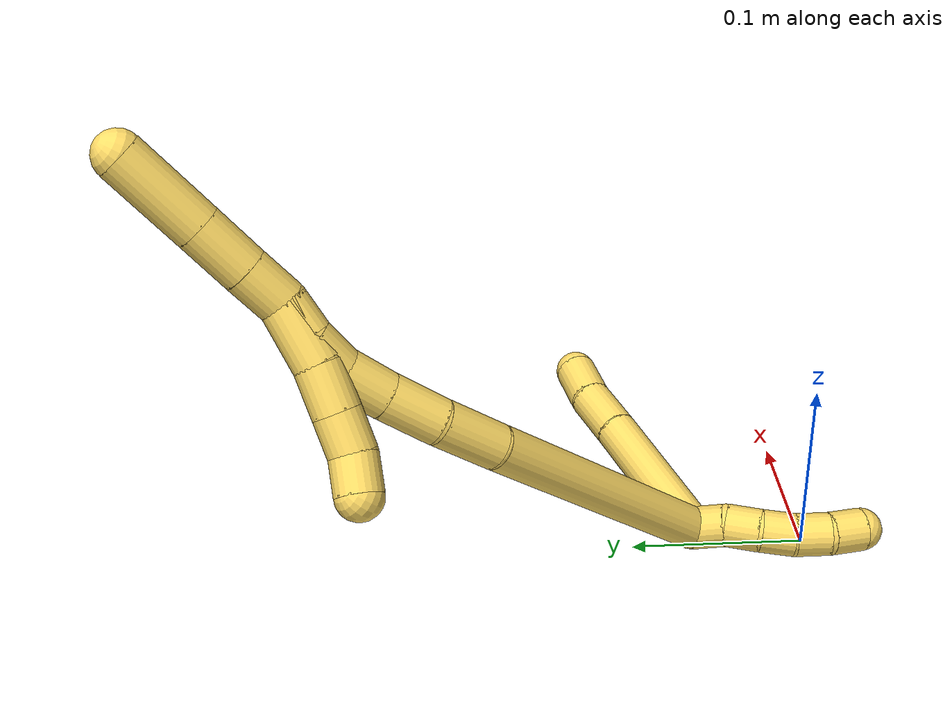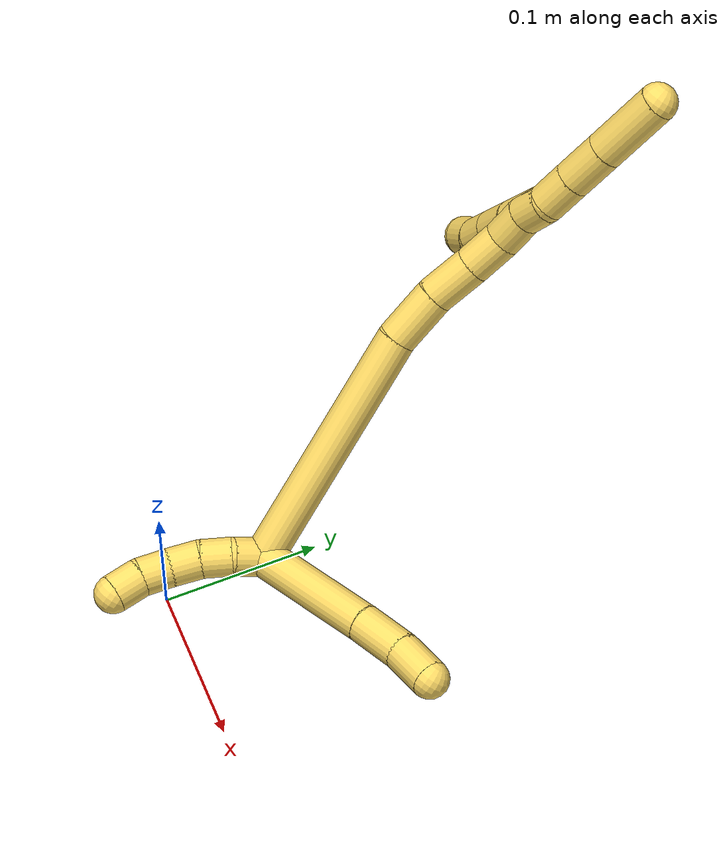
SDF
<sdf version="1.7">
 <world name="default">
  <model name="5">
   <static>0</static>
   <link name="5">
    <collision name="collision-cylinder-e_1_2_8">
     <pose>0.042508 0.008999 0.008983 -0.786288 1.28016 -0.599093</pose>
     <geometry><cylinder><radius>0.0125</radius><length>0.088738</length></cylinder></geometry>
     <surface>
      <friction><ode><mu>1.16</mu><mu2>1.16</mu2><slip1>0</slip1><slip2>0</slip2></ode></friction>
      <contact><ode><kp>1e+06</kp><kd>1</kd><max_vel>0</max_vel><min_depth>0.001</min_depth></ode></contact>
     </surface>
    </collision>
    <visual name="visual-cylinder-e_1_2_8">
     <pose>0.042508 0.008999 0.008983 -0.786288 1.28016 -0.599093</pose>
     <geometry><cylinder><radius>0.0125</radius><length>0.088738</length></cylinder></geometry>
     <material><ambient>1 0.858824 0.4 1</ambient></material>
    </visual>
    <collision name="collision-cylinder-e_2_8_9">
     <pose>0.100896 0.021912 0.020562 -0.985112 1.28319 -0.762579</pose>
     <geometry><cylinder><radius>0.0125</radius><length>0.03312</length></cylinder></geometry>
     <surface>
      <friction><ode><mu>1.16</mu><mu2>1.16</mu2><slip1>0</slip1><slip2>0</slip2></ode></friction>
      <contact><ode><kp>1e+06</kp><kd>1</kd><max_vel>0</max_vel><min_depth>0.001</min_depth></ode></contact>
     </surface>
    </collision>
    <visual name="visual-cylinder-e_2_8_9">
     <pose>0.100896 0.021912 0.020562 -0.985112 1.28319 -0.762579</pose>
     <geometry><cylinder><radius>0.0125</radius><length>0.03312</length></cylinder></geometry>
     <material><ambient>1 0.858824 0.4 1</ambient></material>
    </visual>
    <collision name="collision-cylinder-e_3_9_6">
     <pose>0.130711 0.027628 0.023903 -1.17906 1.43179 -1.05387</pose>
     <geometry><cylinder><radius>0.0125</radius><length>0.028142</length></cylinder></geometry>
     <surface>
      <friction><ode><mu>1.16</mu><mu2>1.16</mu2><slip1>0</slip1><slip2>0</slip2></ode></friction>
      <contact><ode><kp>1e+06</kp><kd>1</kd><max_vel>0</max_vel><min_depth>0.001</min_depth></ode></contact>
     </surface>
    </collision>
    <visual name="visual-cylinder-e_3_9_6">
     <pose>0.130711 0.027628 0.023903 -1.17906 1.43179 -1.05387</pose>
     <geometry><cylinder><radius>0.0125</radius><length>0.028142</length></cylinder></geometry>
     <material><ambient>1 0.858824 0.4 1</ambient></material>
    </visual>
    <collision name="collision-cylinder-e_1_2_10">
     <pose>-0.003093 -0.008433 -0.004395 2.05127 -0.314426 -0.511327</pose>
     <geometry><cylinder><radius>0.0125</radius><length>0.02</length></cylinder></geometry>
     <surface>
      <friction><ode><mu>1.16</mu><mu2>1.16</mu2><slip1>0</slip1><slip2>0</slip2></ode></friction>
      <contact><ode><kp>1e+06</kp><kd>1</kd><max_vel>0</max_vel><min_depth>0.001</min_depth></ode></contact>
     </surface>
    </collision>
    <visual name="visual-cylinder-e_1_2_10">
     <pose>-0.003093 -0.008433 -0.004395 2.05127 -0.314426 -0.511327</pose>
     <geometry><cylinder><radius>0.0125</radius><length>0.02</length></cylinder></geometry>
     <material><ambient>1 0.858824 0.4 1</ambient></material>
    </visual>
    <collision name="collision-cylinder-e_2_10_11">
     <pose>-0.010425 -0.0236 -0.014847 2.30332 -0.437827 -0.926253</pose>
     <geometry><cylinder><radius>0.0125</radius><length>0.02</length></cylinder></geometry>
     <surface>
      <friction><ode><mu>1.16</mu><mu2>1.16</mu2><slip1>0</slip1><slip2>0</slip2></ode></friction>
      <contact><ode><kp>1e+06</kp><kd>1</kd><max_vel>0</max_vel><min_depth>0.001</min_depth></ode></contact>
     </surface>
    </collision>
    <visual name="visual-cylinder-e_2_10_11">
     <pose>-0.010425 -0.0236 -0.014847 2.30332 -0.437827 -0.926253</pose>
     <geometry><cylinder><radius>0.0125</radius><length>0.02</length></cylinder></geometry>
     <material><ambient>1 0.858824 0.4 1</ambient></material>
    </visual>
    <collision name="collision-cylinder-e_3_11_12">
     <pose>-0.017515 -0.036528 -0.028218 2.43882 -0.289071 -0.755883</pose>
     <geometry><cylinder><radius>0.0125</radius><length>0.02</length></cylinder></geometry>
     <surface>
      <friction><ode><mu>1.16</mu><mu2>1.16</mu2><slip1>0</slip1><slip2>0</slip2></ode></friction>
      <contact><ode><kp>1e+06</kp><kd>1</kd><max_vel>0</max_vel><min_depth>0.001</min_depth></ode></contact>
     </surface>
    </collision>
    <visual name="visual-cylinder-e_3_11_12">
     <pose>-0.017515 -0.036528 -0.028218 2.43882 -0.289071 -0.755883</pose>
     <geometry><cylinder><radius>0.0125</radius><length>0.02</length></cylinder></geometry>
     <material><ambient>1 0.858824 0.4 1</ambient></material>
    </visual>
    <collision name="collision-cylinder-e_4_12_13">
     <pose>-0.021833 -0.049774 -0.042471 2.34822 -0.147248 -0.348581</pose>
     <geometry><cylinder><radius>0.0125</radius><length>0.02</length></cylinder></geometry>
     <surface>
      <friction><ode><mu>1.16</mu><mu2>1.16</mu2><slip1>0</slip1><slip2>0</slip2></ode></friction>
      <contact><ode><kp>1e+06</kp><kd>1</kd><max_vel>0</max_vel><min_depth>0.001</min_depth></ode></contact>
     </surface>
    </collision>
    <visual name="visual-cylinder-e_4_12_13">
     <pose>-0.021833 -0.049774 -0.042471 2.34822 -0.147248 -0.348581</pose>
     <geometry><cylinder><radius>0.0125</radius><length>0.02</length></cylinder></geometry>
     <material><ambient>1 0.858824 0.4 1</ambient></material>
    </visual>
    <collision name="collision-cylinder-e_5_13_5">
     <pose>-0.022605 -0.063103 -0.05716 2.46071 0.069631 0.19602</pose>
     <geometry><cylinder><radius>0.0125</radius><length>0.02</length></cylinder></geometry>
     <surface>
      <friction><ode><mu>1.16</mu><mu2>1.16</mu2><slip1>0</slip1><slip2>0</slip2></ode></friction>
      <contact><ode><kp>1e+06</kp><kd>1</kd><max_vel>0</max_vel><min_depth>0.001</min_depth></ode></contact>
     </surface>
    </collision>
    <visual name="visual-cylinder-e_5_13_5">
     <pose>-0.022605 -0.063103 -0.05716 2.46071 0.069631 0.19602</pose>
     <geometry><cylinder><radius>0.0125</radius><length>0.02</length></cylinder></geometry>
     <material><ambient>1 0.858824 0.4 1</ambient></material>
    </visual>
    <collision name="collision-cylinder-e_1_2_14">
     <pose>-0.008914 0.001723 0.081495 -0.021138 -0.108929 0.001152</pose>
     <geometry><cylinder><radius>0.0125</radius><length>0.163999</length></cylinder></geometry>
     <surface>
      <friction><ode><mu>1.16</mu><mu2>1.16</mu2><slip1>0</slip1><slip2>0</slip2></ode></friction>
      <contact><ode><kp>1e+06</kp><kd>1</kd><max_vel>0</max_vel><min_depth>0.001</min_depth></ode></contact>
     </surface>
    </collision>
    <visual name="visual-cylinder-e_1_2_14">
     <pose>-0.008914 0.001723 0.081495 -0.021138 -0.108929 0.001152</pose>
     <geometry><cylinder><radius>0.0125</radius><length>0.163999</length></cylinder></geometry>
     <material><ambient>1 0.858824 0.4 1</ambient></material>
    </visual>
    <collision name="collision-cylinder-e_2_14_15">
     <pose>-0.017107 0.005537 0.180884 -0.11635 0.040053 -0.002333</pose>
     <geometry><cylinder><radius>0.0125</radius><length>0.036058</length></cylinder></geometry>
     <surface>
      <friction><ode><mu>1.16</mu><mu2>1.16</mu2><slip1>0</slip1><slip2>0</slip2></ode></friction>
      <contact><ode><kp>1e+06</kp><kd>1</kd><max_vel>0</max_vel><min_depth>0.001</min_depth></ode></contact>
     </surface>
    </collision>
    <visual name="visual-cylinder-e_2_14_15">
     <pose>-0.017107 0.005537 0.180884 -0.11635 0.040053 -0.002333</pose>
     <geometry><cylinder><radius>0.0125</radius><length>0.036058</length></cylinder></geometry>
     <material><ambient>1 0.858824 0.4 1</ambient></material>
    </visual>
    <collision name="collision-cylinder-e_3_15_16">
     <pose>-0.013338 0.010373 0.213666 -0.182284 0.198615 -0.018212</pose>
     <geometry><cylinder><radius>0.0125</radius><length>0.030887</length></cylinder></geometry>
     <surface>
      <friction><ode><mu>1.16</mu><mu2>1.16</mu2><slip1>0</slip1><slip2>0</slip2></ode></friction>
      <contact><ode><kp>1e+06</kp><kd>1</kd><max_vel>0</max_vel><min_depth>0.001</min_depth></ode></contact>
     </surface>
    </collision>
    <visual name="visual-cylinder-e_3_15_16">
     <pose>-0.013338 0.010373 0.213666 -0.182284 0.198615 -0.018212</pose>
     <geometry><cylinder><radius>0.0125</radius><length>0.030887</length></cylinder></geometry>
     <material><ambient>1 0.858824 0.4 1</ambient></material>
    </visual>
    <collision name="collision-cylinder-e_4_16_17">
     <pose>-0.007643 0.014604 0.241146 -0.117556 0.205868 -0.012157</pose>
     <geometry><cylinder><radius>0.0125</radius><length>0.025904</length></cylinder></geometry>
     <surface>
      <friction><ode><mu>1.16</mu><mu2>1.16</mu2><slip1>0</slip1><slip2>0</slip2></ode></friction>
      <contact><ode><kp>1e+06</kp><kd>1</kd><max_vel>0</max_vel><min_depth>0.001</min_depth></ode></contact>
     </surface>
    </collision>
    <visual name="visual-cylinder-e_4_16_17">
     <pose>-0.007643 0.014604 0.241146 -0.117556 0.205868 -0.012157</pose>
     <geometry><cylinder><radius>0.0125</radius><length>0.025904</length></cylinder></geometry>
     <material><ambient>1 0.858824 0.4 1</ambient></material>
    </visual>
    <collision name="collision-cylinder-e_5_17_18">
     <pose>-0.001667 0.014626 0.264531 0.134889 0.296532 0.020177</pose>
     <geometry><cylinder><radius>0.0125</radius><length>0.022781</length></cylinder></geometry>
     <surface>
      <friction><ode><mu>1.16</mu><mu2>1.16</mu2><slip1>0</slip1><slip2>0</slip2></ode></friction>
      <contact><ode><kp>1e+06</kp><kd>1</kd><max_vel>0</max_vel><min_depth>0.001</min_depth></ode></contact>
     </surface>
    </collision>
    <visual name="visual-cylinder-e_5_17_18">
     <pose>-0.001667 0.014626 0.264531 0.134889 0.296532 0.020177</pose>
     <geometry><cylinder><radius>0.0125</radius><length>0.022781</length></cylinder></geometry>
     <material><ambient>1 0.858824 0.4 1</ambient></material>
    </visual>
    <collision name="collision-cylinder-e_6_18_1">
     <pose>0.007527 0.011629 0.28351 0.185094 0.613677 0.058797</pose>
     <geometry><cylinder><radius>0.0125</radius><length>0.020371</length></cylinder></geometry>
     <surface>
      <friction><ode><mu>1.16</mu><mu2>1.16</mu2><slip1>0</slip1><slip2>0</slip2></ode></friction>
      <contact><ode><kp>1e+06</kp><kd>1</kd><max_vel>0</max_vel><min_depth>0.001</min_depth></ode></contact>
     </surface>
    </collision>
    <visual name="visual-cylinder-e_6_18_1">
     <pose>0.007527 0.011629 0.28351 0.185094 0.613677 0.058797</pose>
     <geometry><cylinder><radius>0.0125</radius><length>0.020371</length></cylinder></geometry>
     <material><ambient>1 0.858824 0.4 1</ambient></material>
    </visual>
    <collision name="collision-cylinder-e_1_1_19">
     <pose>0.017097 0.009507 0.303082 0.051714 0.314129 0.008192</pose>
     <geometry><cylinder><radius>0.0125</radius><length>0.023979</length></cylinder></geometry>
     <surface>
      <friction><ode><mu>1.16</mu><mu2>1.16</mu2><slip1>0</slip1><slip2>0</slip2></ode></friction>
      <contact><ode><kp>1e+06</kp><kd>1</kd><max_vel>0</max_vel><min_depth>0.001</min_depth></ode></contact>
     </surface>
    </collision>
    <visual name="visual-cylinder-e_1_1_19">
     <pose>0.017097 0.009507 0.303082 0.051714 0.314129 0.008192</pose>
     <geometry><cylinder><radius>0.0125</radius><length>0.023979</length></cylinder></geometry>
     <material><ambient>1 0.858824 0.4 1</ambient></material>
    </visual>
    <collision name="collision-cylinder-e_2_19_20">
     <pose>0.025513 0.008026 0.328161 0.065067 0.330759 0.010864</pose>
     <geometry><cylinder><radius>0.0125</radius><length>0.029014</length></cylinder></geometry>
     <surface>
      <friction><ode><mu>1.16</mu><mu2>1.16</mu2><slip1>0</slip1><slip2>0</slip2></ode></friction>
      <contact><ode><kp>1e+06</kp><kd>1</kd><max_vel>0</max_vel><min_depth>0.001</min_depth></ode></contact>
     </surface>
    </collision>
    <visual name="visual-cylinder-e_2_19_20">
     <pose>0.025513 0.008026 0.328161 0.065067 0.330759 0.010864</pose>
     <geometry><cylinder><radius>0.0125</radius><length>0.029014</length></cylinder></geometry>
     <material><ambient>1 0.858824 0.4 1</ambient></material>
    </visual>
    <collision name="collision-cylinder-e_3_20_4">
     <pose>0.037718 0.005728 0.364085 0.063149 0.324489 0.01034</pose>
     <geometry><cylinder><radius>0.0125</radius><length>0.047007</length></cylinder></geometry>
     <surface>
      <friction><ode><mu>1.16</mu><mu2>1.16</mu2><slip1>0</slip1><slip2>0</slip2></ode></friction>
      <contact><ode><kp>1e+06</kp><kd>1</kd><max_vel>0</max_vel><min_depth>0.001</min_depth></ode></contact>
     </surface>
    </collision>
    <visual name="visual-cylinder-e_3_20_4">
     <pose>0.037718 0.005728 0.364085 0.063149 0.324489 0.01034</pose>
     <geometry><cylinder><radius>0.0125</radius><length>0.047007</length></cylinder></geometry>
     <material><ambient>1 0.858824 0.4 1</ambient></material>
    </visual>
    <collision name="collision-cylinder-e_1_1_21">
     <pose>0.00275 0.013768 0.279322 -2.85311 -0.689578 2.37292</pose>
     <geometry><cylinder><radius>0.0125</radius><length>0.033455</length></cylinder></geometry>
     <surface>
      <friction><ode><mu>1.16</mu><mu2>1.16</mu2><slip1>0</slip1><slip2>0</slip2></ode></friction>
      <contact><ode><kp>1e+06</kp><kd>1</kd><max_vel>0</max_vel><min_depth>0.001</min_depth></ode></contact>
     </surface>
    </collision>
    <visual name="visual-cylinder-e_1_1_21">
     <pose>0.00275 0.013768 0.279322 -2.85311 -0.689578 2.37292</pose>
     <geometry><cylinder><radius>0.0125</radius><length>0.033455</length></cylinder></geometry>
     <material><ambient>1 0.858824 0.4 1</ambient></material>
    </visual>
    <collision name="collision-cylinder-e_2_21_22">
     <pose>-0.016168 0.021479 0.258784 -2.68224 -0.737425 2.05326</pose>
     <geometry><cylinder><radius>0.0125</radius><length>0.024615</length></cylinder></geometry>
     <surface>
      <friction><ode><mu>1.16</mu><mu2>1.16</mu2><slip1>0</slip1><slip2>0</slip2></ode></friction>
      <contact><ode><kp>1e+06</kp><kd>1</kd><max_vel>0</max_vel><min_depth>0.001</min_depth></ode></contact>
     </surface>
    </collision>
    <visual name="visual-cylinder-e_2_21_22">
     <pose>-0.016168 0.021479 0.258784 -2.68224 -0.737425 2.05326</pose>
     <geometry><cylinder><radius>0.0125</radius><length>0.024615</length></cylinder></geometry>
     <material><ambient>1 0.858824 0.4 1</ambient></material>
    </visual>
    <collision name="collision-cylinder-e_3_22_23">
     <pose>-0.031687 0.029058 0.243532 -2.67834 -0.740749 2.04986</pose>
     <geometry><cylinder><radius>0.0125</radius><length>0.021469</length></cylinder></geometry>
     <surface>
      <friction><ode><mu>1.16</mu><mu2>1.16</mu2><slip1>0</slip1><slip2>0</slip2></ode></friction>
      <contact><ode><kp>1e+06</kp><kd>1</kd><max_vel>0</max_vel><min_depth>0.001</min_depth></ode></contact>
     </surface>
    </collision>
    <visual name="visual-cylinder-e_3_22_23">
     <pose>-0.031687 0.029058 0.243532 -2.67834 -0.740749 2.04986</pose>
     <geometry><cylinder><radius>0.0125</radius><length>0.021469</length></cylinder></geometry>
     <material><ambient>1 0.858824 0.4 1</ambient></material>
    </visual>
    <collision name="collision-cylinder-e_4_23_3">
     <pose>-0.047477 0.036521 0.232415 -2.36979 -0.988707 1.84978</pose>
     <geometry><cylinder><radius>0.0125</radius><length>0.020461</length></cylinder></geometry>
     <surface>
      <friction><ode><mu>1.16</mu><mu2>1.16</mu2><slip1>0</slip1><slip2>0</slip2></ode></friction>
      <contact><ode><kp>1e+06</kp><kd>1</kd><max_vel>0</max_vel><min_depth>0.001</min_depth></ode></contact>
     </surface>
    </collision>
    <visual name="visual-cylinder-e_4_23_3">
     <pose>-0.047477 0.036521 0.232415 -2.36979 -0.988707 1.84978</pose>
     <geometry><cylinder><radius>0.0125</radius><length>0.020461</length></cylinder></geometry>
     <material><ambient>1 0.858824 0.4 1</ambient></material>
    </visual>
    <collision name="collision-sphere-3">
     <pose>-0.056023 0.040443 0.228384 0 -0 0</pose>
     <geometry><sphere><radius>0.0125</radius></sphere></geometry>
     <surface>
      <friction><ode><mu>1.16</mu><mu2>1.16</mu2><slip1>0</slip1><slip2>0</slip2></ode></friction>
      <contact><ode><kp>1e+06</kp><kd>1</kd><max_vel>0</max_vel><min_depth>0.001</min_depth></ode></contact>
     </surface>
    </collision>
    <visual name="visual-sphere-3">
     <pose>-0.056023 0.040443 0.228384 0 -0 0</pose>
     <geometry><sphere><radius>0.0125</radius></sphere></geometry>
     <material><ambient>1 0.858824 0.4 1</ambient></material>
    </visual>
    <collision name="collision-sphere-23">
     <pose>-0.038931 0.032598 0.236445 0 -0 0</pose>
     <geometry><sphere><radius>0.0125</radius></sphere></geometry>
     <surface>
      <friction><ode><mu>1.16</mu><mu2>1.16</mu2><slip1>0</slip1><slip2>0</slip2></ode></friction>
      <contact><ode><kp>1e+06</kp><kd>1</kd><max_vel>0</max_vel><min_depth>0.001</min_depth></ode></contact>
     </surface>
    </collision>
    <visual name="visual-sphere-23">
     <pose>-0.038931 0.032598 0.236445 0 -0 0</pose>
     <geometry><sphere><radius>0.0125</radius></sphere></geometry>
     <material><ambient>1 0.858824 0.4 1</ambient></material>
    </visual>
    <collision name="collision-sphere-22">
     <pose>-0.024443 0.025518 0.250619 0 -0 0</pose>
     <geometry><sphere><radius>0.0125</radius></sphere></geometry>
     <surface>
      <friction><ode><mu>1.16</mu><mu2>1.16</mu2><slip1>0</slip1><slip2>0</slip2></ode></friction>
      <contact><ode><kp>1e+06</kp><kd>1</kd><max_vel>0</max_vel><min_depth>0.001</min_depth></ode></contact>
     </surface>
    </collision>
    <visual name="visual-sphere-22">
     <pose>-0.024443 0.025518 0.250619 0 -0 0</pose>
     <geometry><sphere><radius>0.0125</radius></sphere></geometry>
     <material><ambient>1 0.858824 0.4 1</ambient></material>
    </visual>
    <collision name="collision-sphere-21">
     <pose>-0.007892 0.01744 0.26695 0 -0 0</pose>
     <geometry><sphere><radius>0.0125</radius></sphere></geometry>
     <surface>
      <friction><ode><mu>1.16</mu><mu2>1.16</mu2><slip1>0</slip1><slip2>0</slip2></ode></friction>
      <contact><ode><kp>1e+06</kp><kd>1</kd><max_vel>0</max_vel><min_depth>0.001</min_depth></ode></contact>
     </surface>
    </collision>
    <visual name="visual-sphere-21">
     <pose>-0.007892 0.01744 0.26695 0 -0 0</pose>
     <geometry><sphere><radius>0.0125</radius></sphere></geometry>
     <material><ambient>1 0.858824 0.4 1</ambient></material>
    </visual>
    <collision name="collision-sphere-4">
     <pose>0.045211 0.004322 0.386318 0 -0 0</pose>
     <geometry><sphere><radius>0.0125</radius></sphere></geometry>
     <surface>
      <friction><ode><mu>1.16</mu><mu2>1.16</mu2><slip1>0</slip1><slip2>0</slip2></ode></friction>
      <contact><ode><kp>1e+06</kp><kd>1</kd><max_vel>0</max_vel><min_depth>0.001</min_depth></ode></contact>
     </surface>
    </collision>
    <visual name="visual-sphere-4">
     <pose>0.045211 0.004322 0.386318 0 -0 0</pose>
     <geometry><sphere><radius>0.0125</radius></sphere></geometry>
     <material><ambient>1 0.858824 0.4 1</ambient></material>
    </visual>
    <collision name="collision-sphere-20">
     <pose>0.030224 0.007134 0.341853 0 -0 0</pose>
     <geometry><sphere><radius>0.0125</radius></sphere></geometry>
     <surface>
      <friction><ode><mu>1.16</mu><mu2>1.16</mu2><slip1>0</slip1><slip2>0</slip2></ode></friction>
      <contact><ode><kp>1e+06</kp><kd>1</kd><max_vel>0</max_vel><min_depth>0.001</min_depth></ode></contact>
     </surface>
    </collision>
    <visual name="visual-sphere-20">
     <pose>0.030224 0.007134 0.341853 0 -0 0</pose>
     <geometry><sphere><radius>0.0125</radius></sphere></geometry>
     <material><ambient>1 0.858824 0.4 1</ambient></material>
    </visual>
    <collision name="collision-sphere-11">
     <pose>-0.014665 -0.030333 -0.020904 0 -0 0</pose>
     <geometry><sphere><radius>0.0125</radius></sphere></geometry>
     <surface>
      <friction><ode><mu>1.16</mu><mu2>1.16</mu2><slip1>0</slip1><slip2>0</slip2></ode></friction>
      <contact><ode><kp>1e+06</kp><kd>1</kd><max_vel>0</max_vel><min_depth>0.001</min_depth></ode></contact>
     </surface>
    </collision>
    <visual name="visual-sphere-11">
     <pose>-0.014665 -0.030333 -0.020904 0 -0 0</pose>
     <geometry><sphere><radius>0.0125</radius></sphere></geometry>
     <material><ambient>1 0.858824 0.4 1</ambient></material>
    </visual>
    <collision name="collision-sphere-10">
     <pose>-0.006185 -0.016866 -0.008791 0 -0 0</pose>
     <geometry><sphere><radius>0.0125</radius></sphere></geometry>
     <surface>
      <friction><ode><mu>1.16</mu><mu2>1.16</mu2><slip1>0</slip1><slip2>0</slip2></ode></friction>
      <contact><ode><kp>1e+06</kp><kd>1</kd><max_vel>0</max_vel><min_depth>0.001</min_depth></ode></contact>
     </surface>
    </collision>
    <visual name="visual-sphere-10">
     <pose>-0.006185 -0.016866 -0.008791 0 -0 0</pose>
     <geometry><sphere><radius>0.0125</radius></sphere></geometry>
     <material><ambient>1 0.858824 0.4 1</ambient></material>
    </visual>
    <collision name="collision-sphere-6">
     <pose>0.144647 0.02943 0.024647 0 -0 0</pose>
     <geometry><sphere><radius>0.0125</radius></sphere></geometry>
     <surface>
      <friction><ode><mu>1.16</mu><mu2>1.16</mu2><slip1>0</slip1><slip2>0</slip2></ode></friction>
      <contact><ode><kp>1e+06</kp><kd>1</kd><max_vel>0</max_vel><min_depth>0.001</min_depth></ode></contact>
     </surface>
    </collision>
    <visual name="visual-sphere-6">
     <pose>0.144647 0.02943 0.024647 0 -0 0</pose>
     <geometry><sphere><radius>0.0125</radius></sphere></geometry>
     <material><ambient>1 0.858824 0.4 1</ambient></material>
    </visual>
    <collision name="collision-sphere-9">
     <pose>0.116776 0.025826 0.023158 0 -0 0</pose>
     <geometry><sphere><radius>0.0125</radius></sphere></geometry>
     <surface>
      <friction><ode><mu>1.16</mu><mu2>1.16</mu2><slip1>0</slip1><slip2>0</slip2></ode></friction>
      <contact><ode><kp>1e+06</kp><kd>1</kd><max_vel>0</max_vel><min_depth>0.001</min_depth></ode></contact>
     </surface>
    </collision>
    <visual name="visual-sphere-9">
     <pose>0.116776 0.025826 0.023158 0 -0 0</pose>
     <geometry><sphere><radius>0.0125</radius></sphere></geometry>
     <material><ambient>1 0.858824 0.4 1</ambient></material>
    </visual>
    <collision name="collision-sphere-2">
     <geometry><sphere><radius>0.0125</radius></sphere></geometry>
     <surface>
      <friction><ode><mu>1.16</mu><mu2>1.16</mu2><slip1>0</slip1><slip2>0</slip2></ode></friction>
      <contact><ode><kp>1e+06</kp><kd>1</kd><max_vel>0</max_vel><min_depth>0.001</min_depth></ode></contact>
     </surface>
    </collision>
    <visual name="visual-sphere-2">
     <geometry><sphere><radius>0.0125</radius></sphere></geometry>
     <material><ambient>1 0.858824 0.4 1</ambient></material>
    </visual>
    <collision name="collision-sphere-19">
     <pose>0.020801 0.008918 0.314469 0 -0 0</pose>
     <geometry><sphere><radius>0.0125</radius></sphere></geometry>
     <surface>
      <friction><ode><mu>1.16</mu><mu2>1.16</mu2><slip1>0</slip1><slip2>0</slip2></ode></friction>
      <contact><ode><kp>1e+06</kp><kd>1</kd><max_vel>0</max_vel><min_depth>0.001</min_depth></ode></contact>
     </surface>
    </collision>
    <visual name="visual-sphere-19">
     <pose>0.020801 0.008918 0.314469 0 -0 0</pose>
     <geometry><sphere><radius>0.0125</radius></sphere></geometry>
     <material><ambient>1 0.858824 0.4 1</ambient></material>
    </visual>
    <collision name="collision-sphere-8">
     <pose>0.085017 0.017997 0.017965 0 -0 0</pose>
     <geometry><sphere><radius>0.0125</radius></sphere></geometry>
     <surface>
      <friction><ode><mu>1.16</mu><mu2>1.16</mu2><slip1>0</slip1><slip2>0</slip2></ode></friction>
      <contact><ode><kp>1e+06</kp><kd>1</kd><max_vel>0</max_vel><min_depth>0.001</min_depth></ode></contact>
     </surface>
    </collision>
    <visual name="visual-sphere-8">
     <pose>0.085017 0.017997 0.017965 0 -0 0</pose>
     <geometry><sphere><radius>0.0125</radius></sphere></geometry>
     <material><ambient>1 0.858824 0.4 1</ambient></material>
    </visual>
    <collision name="collision-sphere-12">
     <pose>-0.020366 -0.042724 -0.035532 0 -0 0</pose>
     <geometry><sphere><radius>0.0125</radius></sphere></geometry>
     <surface>
      <friction><ode><mu>1.16</mu><mu2>1.16</mu2><slip1>0</slip1><slip2>0</slip2></ode></friction>
      <contact><ode><kp>1e+06</kp><kd>1</kd><max_vel>0</max_vel><min_depth>0.001</min_depth></ode></contact>
     </surface>
    </collision>
    <visual name="visual-sphere-12">
     <pose>-0.020366 -0.042724 -0.035532 0 -0 0</pose>
     <geometry><sphere><radius>0.0125</radius></sphere></geometry>
     <material><ambient>1 0.858824 0.4 1</ambient></material>
    </visual>
    <collision name="collision-sphere-13">
     <pose>-0.0233 -0.056824 -0.049409 0 -0 0</pose>
     <geometry><sphere><radius>0.0125</radius></sphere></geometry>
     <surface>
      <friction><ode><mu>1.16</mu><mu2>1.16</mu2><slip1>0</slip1><slip2>0</slip2></ode></friction>
      <contact><ode><kp>1e+06</kp><kd>1</kd><max_vel>0</max_vel><min_depth>0.001</min_depth></ode></contact>
     </surface>
    </collision>
    <visual name="visual-sphere-13">
     <pose>-0.0233 -0.056824 -0.049409 0 -0 0</pose>
     <geometry><sphere><radius>0.0125</radius></sphere></geometry>
     <material><ambient>1 0.858824 0.4 1</ambient></material>
    </visual>
    <collision name="collision-sphere-5">
     <pose>-0.021909 -0.069383 -0.064912 0 -0 0</pose>
     <geometry><sphere><radius>0.0125</radius></sphere></geometry>
     <surface>
      <friction><ode><mu>1.16</mu><mu2>1.16</mu2><slip1>0</slip1><slip2>0</slip2></ode></friction>
      <contact><ode><kp>1e+06</kp><kd>1</kd><max_vel>0</max_vel><min_depth>0.001</min_depth></ode></contact>
     </surface>
    </collision>
    <visual name="visual-sphere-5">
     <pose>-0.021909 -0.069383 -0.064912 0 -0 0</pose>
     <geometry><sphere><radius>0.0125</radius></sphere></geometry>
     <material><ambient>1 0.858824 0.4 1</ambient></material>
    </visual>
    <collision name="collision-sphere-14">
     <pose>-0.017829 0.003446 0.162991 0 -0 0</pose>
     <geometry><sphere><radius>0.0125</radius></sphere></geometry>
     <surface>
      <friction><ode><mu>1.16</mu><mu2>1.16</mu2><slip1>0</slip1><slip2>0</slip2></ode></friction>
      <contact><ode><kp>1e+06</kp><kd>1</kd><max_vel>0</max_vel><min_depth>0.001</min_depth></ode></contact>
     </surface>
    </collision>
    <visual name="visual-sphere-14">
     <pose>-0.017829 0.003446 0.162991 0 -0 0</pose>
     <geometry><sphere><radius>0.0125</radius></sphere></geometry>
     <material><ambient>1 0.858824 0.4 1</ambient></material>
    </visual>
    <collision name="collision-sphere-15">
     <pose>-0.016385 0.007628 0.198777 0 -0 0</pose>
     <geometry><sphere><radius>0.0125</radius></sphere></geometry>
     <surface>
      <friction><ode><mu>1.16</mu><mu2>1.16</mu2><slip1>0</slip1><slip2>0</slip2></ode></friction>
      <contact><ode><kp>1e+06</kp><kd>1</kd><max_vel>0</max_vel><min_depth>0.001</min_depth></ode></contact>
     </surface>
    </collision>
    <visual name="visual-sphere-15">
     <pose>-0.016385 0.007628 0.198777 0 -0 0</pose>
     <geometry><sphere><radius>0.0125</radius></sphere></geometry>
     <material><ambient>1 0.858824 0.4 1</ambient></material>
    </visual>
    <collision name="collision-sphere-16">
     <pose>-0.010291 0.013117 0.228555 0 -0 0</pose>
     <geometry><sphere><radius>0.0125</radius></sphere></geometry>
     <surface>
      <friction><ode><mu>1.16</mu><mu2>1.16</mu2><slip1>0</slip1><slip2>0</slip2></ode></friction>
      <contact><ode><kp>1e+06</kp><kd>1</kd><max_vel>0</max_vel><min_depth>0.001</min_depth></ode></contact>
     </surface>
    </collision>
    <visual name="visual-sphere-16">
     <pose>-0.010291 0.013117 0.228555 0 -0 0</pose>
     <geometry><sphere><radius>0.0125</radius></sphere></geometry>
     <material><ambient>1 0.858824 0.4 1</ambient></material>
    </visual>
    <collision name="collision-sphere-17">
     <pose>-0.004996 0.016091 0.253737 0 -0 0</pose>
     <geometry><sphere><radius>0.0125</radius></sphere></geometry>
     <surface>
      <friction><ode><mu>1.16</mu><mu2>1.16</mu2><slip1>0</slip1><slip2>0</slip2></ode></friction>
      <contact><ode><kp>1e+06</kp><kd>1</kd><max_vel>0</max_vel><min_depth>0.001</min_depth></ode></contact>
     </surface>
    </collision>
    <visual name="visual-sphere-17">
     <pose>-0.004996 0.016091 0.253737 0 -0 0</pose>
     <geometry><sphere><radius>0.0125</radius></sphere></geometry>
     <material><ambient>1 0.858824 0.4 1</ambient></material>
    </visual>
    <collision name="collision-sphere-18">
     <pose>0.001661 0.013162 0.275325 0 -0 0</pose>
     <geometry><sphere><radius>0.0125</radius></sphere></geometry>
     <surface>
      <friction><ode><mu>1.16</mu><mu2>1.16</mu2><slip1>0</slip1><slip2>0</slip2></ode></friction>
      <contact><ode><kp>1e+06</kp><kd>1</kd><max_vel>0</max_vel><min_depth>0.001</min_depth></ode></contact>
     </surface>
    </collision>
    <visual name="visual-sphere-18">
     <pose>0.001661 0.013162 0.275325 0 -0 0</pose>
     <geometry><sphere><radius>0.0125</radius></sphere></geometry>
     <material><ambient>1 0.858824 0.4 1</ambient></material>
    </visual>
    <collision name="collision-sphere-1">
     <pose>0.013392 0.010097 0.291695 0 -0 0</pose>
     <geometry><sphere><radius>0.0125</radius></sphere></geometry>
     <surface>
      <friction><ode><mu>1.16</mu><mu2>1.16</mu2><slip1>0</slip1><slip2>0</slip2></ode></friction>
      <contact><ode><kp>1e+06</kp><kd>1</kd><max_vel>0</max_vel><min_depth>0.001</min_depth></ode></contact>
     </surface>
    </collision>
    <visual name="visual-sphere-1">
     <pose>0.013392 0.010097 0.291695 0 -0 0</pose>
     <geometry><sphere><radius>0.0125</radius></sphere></geometry>
     <material><ambient>1 0.858824 0.4 1</ambient></material>
    </visual>
    <inertial>
     <pose>0.010233 0.004686 0.137795 0 -0 0</pose>
     <mass>0.75</mass>
     <inertia>
      <ixx>0.000418</ixx>
      <ixy>0</ixy>
      <ixz>0</ixz>
      <iyy>0.000467</iyy>
      <iyz>0</iyz>
      <izz>-2.3e-05</izz>
     </inertia>
    </inertial>
   </link>
   <pose>0.000555 0.065441 0.011945 -0.833789 -0.264703 0.136396</pose>
  </model>
 </world>
</sdf>
